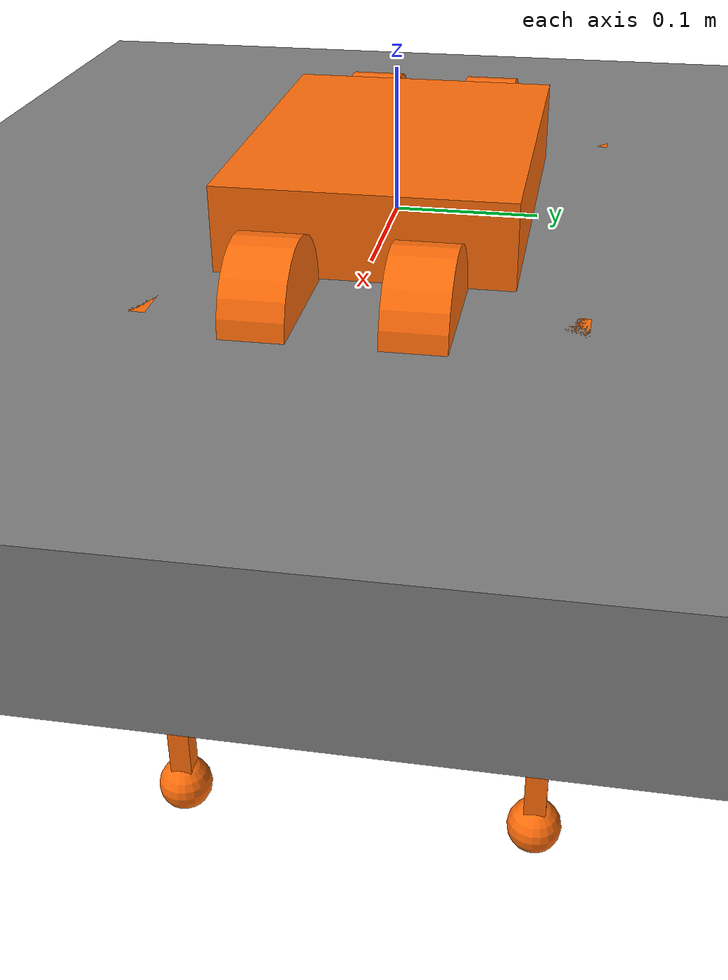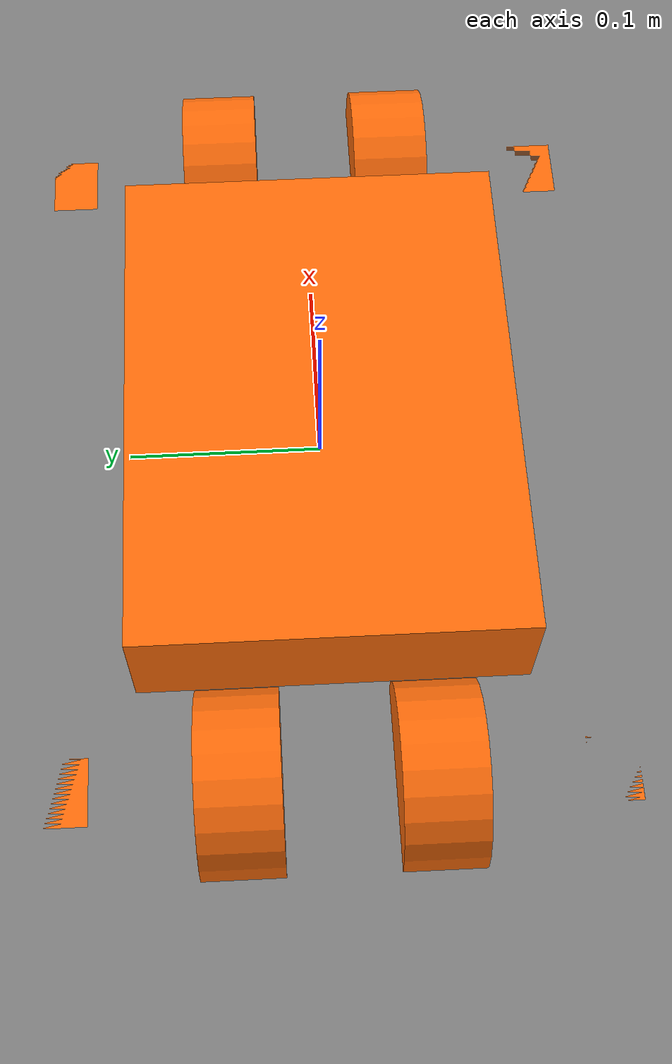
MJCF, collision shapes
<mujoco model="a1_description">
    <compiler angle="radian" meshdir="../meshes/"/>
    <size njmax="500" nconmax="100" />
    <asset>
        <mesh name="trunk" file="trunk.stl" />
        <mesh name="hip" file="hip.stl" />
        <mesh name="thigh_mirror" file="thigh_mirror.stl" />
        <mesh name="calf" file="calf.stl" />
        <mesh name="thigh" file="thigh.stl" />
    </asset>
    <option integrator="Euler" timestep="0.001"/>
    <worldbody>
        <geom size="50 50 0.05" pos="0 0 -0.05" friction="1.0 .1 .1" type="box" />
        <body name="base" pos="0 0 0">
            <site name="imu_site" pos="0 0 0" size=".01 .01 .01" type="box"/>
            <inertial pos="0.0127283 0.00218554 0.000514891" quat="0.00186575 0.711507 0.000389649 0.702677" mass="4.714" diaginertia="0.0648213 0.0565803 0.0169323" />
            <joint name="floating_joint" type="free" />
            <geom size="0.0005 0.0005 0.0005" type="box" contype="0" conaffinity="0" group="1" />
            <geom type="mesh" contype="0" conaffinity="0" group="1" rgba="1 0.423529 0.0392157 1" mesh="trunk" />
            <geom size="0.1335 0.097 0.057" type="box" rgba="1 0.423529 0.0392157 1" />
            <geom size="0.0005 0.0005 0.0005" type="box" contype="0" conaffinity="0" group="1" rgba="0.8 0 0 1" />
            <geom size="0.0005 0.0005 0.0005" type="box" rgba="0.8 0 0 1" />
            <body name="FR_hip" pos="0.183 -0.047 0">
                <inertial pos="-0.003311 -0.000635 3.1e-05" quat="0.507528 0.506268 0.491507 0.494499" mass="0.696" diaginertia="0.000807752 0.00055293 0.000468983" />
                <joint name="FR_hip_joint" pos="0 0 0" axis="1 0 0" limited="true" range="-0.802851 0.802851" />
                <geom quat="0 1 0 0" type="mesh" contype="0" conaffinity="0" group="1" rgba="1 0.423529 0.0392157 1" mesh="hip" />
                <geom size="0.046 0.02" quat="0.707107 0.707107 0 0" type="cylinder" rgba="1 0.423529 0.0392157 1" />
                <body name="FR_thigh" pos="0 -0.08505 0">
                    <inertial pos="-0.003237 0.022327 -0.027326" quat="0.999125 -0.00256393 -0.0409531 -0.00806091" mass="1.013" diaginertia="0.00555739 0.00513936 0.00133944" />
                    <joint name="FR_thigh_joint" pos="0 0 0" axis="0 1 0" limited="true" range="-1.0472 4.18879" />
                    <geom type="mesh" contype="0" conaffinity="0" group="1" rgba="1 0.423529 0.0392157 1" mesh="thigh_mirror" />
                    <geom size="0.1 0.01225 0.017" pos="0 0 -0.1" quat="0.707107 0 0.707107 0" type="box" rgba="1 0.423529 0.0392157 1" />
                    <body name="FR_calf" pos="0 0 -0.2">
                        <inertial pos="0.00472659 0 -0.131975" quat="0.706886 0.017653 0.017653 0.706886" mass="0.226" diaginertia="0.00340344 0.00339393 3.54834e-05" />
                        <joint name="FR_calf_joint" pos="0 0 0" axis="0 1 0" limited="true" range="-2.69653 -0.916298" />
                        <geom type="mesh" contype="0" conaffinity="0" group="1" rgba="1 0.423529 0.0392157 1" mesh="calf" />
                        <geom size="0.1 0.008 0.008" pos="0 0 -0.1" quat="0.707107 0 0.707107 0" type="box" rgba="1 0.423529 0.0392157 1" />
                        <geom size="0.01" pos="0 0 -0.2" contype="0" conaffinity="0" group="1" rgba="1 0.423529 0.0392157 1" />
                        <geom size="0.02" pos="0 0 -0.2" rgba="1 0.423529 0.0392157 1"/>
                        <site name="FR_foot" pos="0 0 -0.2" size=".02" type="sphere"/>
                     </body>
                </body>
            </body>
            <body name="FL_hip" pos="0.183 0.047 0">
                <inertial pos="-0.003311 0.000635 3.1e-05" quat="0.494499 0.491507 0.506268 0.507528" mass="0.696" diaginertia="0.000807752 0.00055293 0.000468983" />
                <joint name="FL_hip_joint" pos="0 0 0" axis="1 0 0" limited="true" range="-0.802851 0.802851" />
                <geom type="mesh" contype="0" conaffinity="0" group="1" rgba="1 0.423529 0.0392157 1" mesh="hip" />
                <geom size="0.046 0.02" quat="0.707107 0.707107 0 0" type="cylinder" rgba="1 0.423529 0.0392157 1" />
                <body name="FL_thigh" pos="0 0.08505 0">
                    <inertial pos="-0.003237 -0.022327 -0.027326" quat="0.999125 0.00256393 -0.0409531 0.00806091" mass="1.013" diaginertia="0.00555739 0.00513936 0.00133944" />
                    <joint name="FL_thigh_joint" pos="0 0 0" axis="0 1 0" limited="true" range="-1.0472 4.18879" />
                    <geom type="mesh" contype="0" conaffinity="0" group="1" rgba="1 0.423529 0.0392157 1" mesh="thigh" />
                    <geom size="0.1 0.01225 0.017" pos="0 0 -0.1" quat="0.707107 0 0.707107 0" type="box" rgba="1 0.423529 0.0392157 1" />
                    <body name="FL_calf" pos="0 0 -0.2">
                        <inertial pos="0.00472659 0 -0.131975" quat="0.706886 0.017653 0.017653 0.706886" mass="0.226" diaginertia="0.00340344 0.00339393 3.54834e-05" />
                        <joint name="FL_calf_joint" pos="0 0 0" axis="0 1 0" limited="true" range="-2.69653 -0.916298" />
                        <geom type="mesh" contype="0" conaffinity="0" group="1" rgba="1 0.423529 0.0392157 1" mesh="calf" />
                        <geom size="0.1 0.008 0.008" pos="0 0 -0.1" quat="0.707107 0 0.707107 0" type="box" rgba="1 0.423529 0.0392157 1" />
                        <geom size="0.01" pos="0 0 -0.2" contype="0" conaffinity="0" group="1" rgba="1 0.423529 0.0392157 1" />
                        <geom size="0.02" pos="0 0 -0.2" rgba="1 0.423529 0.0392157 1" />
                        <site name="FL_foot" pos="0 0 -0.2" size=".02" type="sphere"/>
                    </body>
                </body>
            </body>
            <body name="RR_hip" pos="-0.183 -0.047 0">
                <inertial pos="0.003311 -0.000635 3.1e-05" quat="0.491507 0.494499 0.507528 0.506268" mass="0.696" diaginertia="0.000807752 0.00055293 0.000468983" />
                <joint name="RR_hip_joint" pos="0 0 0" axis="1 0 0" limited="true" range="-0.802851 0.802851" />
                <geom quat="0 0 0 -1" type="mesh" contype="0" conaffinity="0" group="1" rgba="1 0.423529 0.0392157 1" mesh="hip" />
                <geom size="0.046 0.02" quat="0.707107 0.707107 0 0" type="cylinder" rgba="1 0.423529 0.0392157 1" />
                <body name="RR_thigh" pos="0 -0.08505 0">
                    <inertial pos="-0.003237 0.022327 -0.027326" quat="0.999125 -0.00256393 -0.0409531 -0.00806091" mass="1.013" diaginertia="0.00555739 0.00513936 0.00133944" />
                    <joint name="RR_thigh_joint" pos="0 0 0" axis="0 1 0" limited="true" range="-1.0472 4.18879" />
                    <geom type="mesh" contype="0" conaffinity="0" group="1" rgba="1 0.423529 0.0392157 1" mesh="thigh_mirror" />
                    <geom size="0.1 0.01225 0.017" pos="0 0 -0.1" quat="0.707107 0 0.707107 0" type="box" rgba="1 0.423529 0.0392157 1" />
                    <body name="RR_calf" pos="0 0 -0.2">
                        <inertial pos="0.00472659 0 -0.131975" quat="0.706886 0.017653 0.017653 0.706886" mass="0.226" diaginertia="0.00340344 0.00339393 3.54834e-05" />
                        <joint name="RR_calf_joint" pos="0 0 0" axis="0 1 0" limited="true" range="-2.69653 -0.916298" />
                        <geom type="mesh" contype="0" conaffinity="0" group="1" rgba="1 0.423529 0.0392157 1" mesh="calf" />
                        <geom size="0.1 0.008 0.008" pos="0 0 -0.1" quat="0.707107 0 0.707107 0" type="box" rgba="1 0.423529 0.0392157 1" />
                        <geom size="0.01" pos="0 0 -0.2" contype="0" conaffinity="0" group="1" rgba="1 0.423529 0.0392157 1" />
                        <geom size="0.02" pos="0 0 -0.2" rgba="1 0.423529 0.0392157 1" />
                        <site name="RR_foot" pos="0 0 -0.2" size=".02" type="sphere"/>

                    </body>
                </body>
            </body>
            <body name="RL_hip" pos="-0.183 0.047 0">
                <inertial pos="0.003311 0.000635 3.1e-05" quat="0.506268 0.507528 0.494499 0.491507" mass="0.696" diaginertia="0.000807752 0.00055293 0.000468983" />
                <joint name="RL_hip_joint" pos="0 0 0" axis="1 0 0" limited="true" range="-0.802851 0.802851" />
                <geom quat="0 0 1 0" type="mesh" contype="0" conaffinity="0" group="1" rgba="1 0.423529 0.0392157 1" mesh="hip" />
                <geom size="0.046 0.02" quat="0.707107 0.707107 0 0" type="cylinder" rgba="1 0.423529 0.0392157 1" />
                <body name="RL_thigh" pos="0 0.08505 0">
                    <inertial pos="-0.003237 -0.022327 -0.027326" quat="0.999125 0.00256393 -0.0409531 0.00806091" mass="1.013" diaginertia="0.00555739 0.00513936 0.00133944" />
                    <joint name="RL_thigh_joint" pos="0 0 0" axis="0 1 0" limited="true" range="-1.0472 4.18879" />
                    <geom type="mesh" contype="0" conaffinity="0" group="1" rgba="1 0.423529 0.0392157 1" mesh="thigh" />
                    <geom size="0.1 0.01225 0.017" pos="0 0 -0.1" quat="0.707107 0 0.707107 0" type="box" rgba="1 0.423529 0.0392157 1" />
                    <body name="RL_calf" pos="0 0 -0.2">
                        <inertial pos="0.00472659 0 -0.131975" quat="0.706886 0.017653 0.017653 0.706886" mass="0.226" diaginertia="0.00340344 0.00339393 3.54834e-05" />
                        <joint name="RL_calf_joint" pos="0 0 0" axis="0 1 0" limited="true" range="-2.69653 -0.916298" />
                        <geom type="mesh" contype="0" conaffinity="0" group="1" rgba="1 0.423529 0.0392157 1" mesh="calf" />
                        <geom size="0.1 0.008 0.008" pos="0 0 -0.1" quat="0.707107 0 0.707107 0" type="box" rgba="1 0.423529 0.0392157 1" />
                        <geom size="0.01" pos="0 0 -0.2" contype="0" conaffinity="0" group="1" rgba="1 0.423529 0.0392157 1" />
                        <geom size="0.02" pos="0 0 -0.2" rgba="1 0.423529 0.0392157 1" />
                        <site name="RL_foot" pos="0 0 -0.2" size=".02" type="sphere"/>
                    </body>
                </body>
            </body>
        </body>
    </worldbody>

    <actuator>
        <motor gear="1" joint="FR_hip_joint" name="FR_hip_motor" forcerange="-35.0 35.0" ctrlrange="-35.0 35.0"/>
        <motor gear="1" joint="FR_thigh_joint" name="FR_thigh_motor" forcerange="-35.0 35.0" ctrlrange="-35.0 35.0"/>
        <motor gear="1" joint="FR_calf_joint" name="FR_calf_motor" forcerange="-35.0 35.0" ctrlrange="-35.0 35.0"/>

        <motor gear="1" joint="FL_hip_joint" name="FL_hip_motor" forcerange="-35.0 35.0" ctrlrange="-35.0 35.0"/>
        <motor gear="1" joint="FL_thigh_joint" name="FL_thigh_motor" forcerange="-35.0 35.0" ctrlrange="-35.0 35.0"/>
        <motor gear="1" joint="FL_calf_joint" name="FL_calf_motor" forcerange="-35.0 35.0" ctrlrange="-35.0 35.0"/>

        <motor gear="1" joint="RR_hip_joint" name="RR_hip_motor" forcerange="-35.0 35.0" ctrlrange="-35.0 35.0"/>
        <motor gear="1" joint="RR_thigh_joint" name="RR_thigh_motor" forcerange="-35.0 35.0" ctrlrange="-35.0 35.0"/>
        <motor gear="1" joint="RR_calf_joint" name="RR_calf_motor" forcerange="-35.0 35.0" ctrlrange="-35.0 35.0"/>

        <motor gear="1" joint="RL_hip_joint" name="RL_hip_motor" forcerange="-35.0 35.0" ctrlrange="-35.0 35.0"/>
        <motor gear="1" joint="RL_thigh_joint" name="RL_thigh_motor" forcerange="-35.0 35.0" ctrlrange="-35.0 35.0"/>
        <motor gear="1" joint="RL_calf_joint" name="RL_calf_motor" forcerange="-35.0 35.0" ctrlrange="-35.0 35.0"/>
    </actuator>

    <option>
		<flag sensornoise="enable"/>
	</option>
    <sensor>
		<accelerometer name="accel" noise="0.2" site="imu_site"/>
		<gyro name="gyro" noise="0.2" site="imu_site"/>

		<jointpos joint="FR_hip_joint" noise="0.001"/>
		<jointpos joint="FR_thigh_joint" noise="0.001"/>
		<jointpos joint="FR_calf_joint" noise="0.001"/>

		<jointpos joint="FL_hip_joint" noise="0.001"/>
		<jointpos joint="FL_thigh_joint" noise="0.001"/>
		<jointpos joint="FL_calf_joint" noise="0.001"/>

		<jointpos joint="RR_hip_joint" noise="0.001"/>
		<jointpos joint="RR_thigh_joint" noise="0.001"/>
		<jointpos joint="RR_calf_joint" noise="0.001"/>

		<jointpos joint="RL_hip_joint" noise="0.001"/>
		<jointpos joint="RL_thigh_joint" noise="0.001"/>
		<jointpos joint="RL_calf_joint" noise="0.001"/>

		<jointvel joint="FR_hip_joint" noise="0.2"/>
		<jointvel joint="FR_thigh_joint" noise="0.2"/>
		<jointvel joint="FR_calf_joint" noise="0.2"/>

		<jointvel joint="FL_hip_joint" noise="0.2"/>
		<jointvel joint="FL_thigh_joint" noise="0.2"/>
		<jointvel joint="FL_calf_joint" noise="0.2"/>

		<jointvel joint="RR_hip_joint" noise="0.2"/>
		<jointvel joint="RR_thigh_joint" noise="0.2"/>
		<jointvel joint="RR_calf_joint" noise="0.2"/>

		<jointvel joint="RL_hip_joint" noise="0.2"/>
		<jointvel joint="RL_thigh_joint" noise="0.2"/>
		<jointvel joint="RL_calf_joint" noise="0.2"/>

        <touch name="FR_foot_sensor" site="FR_foot" />
        <touch name="FL_foot_sensor" site="FL_foot" />
        <touch name="RR_foot_sensor" site="RR_foot" />
        <touch name="RL_foot_sensor" site="RL_foot" />
	</sensor>
</mujoco>
